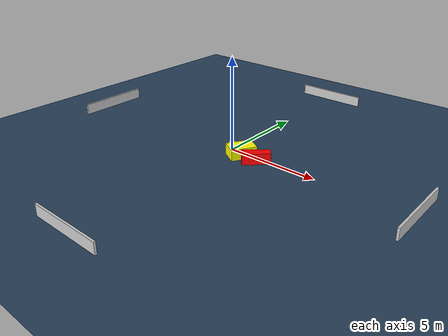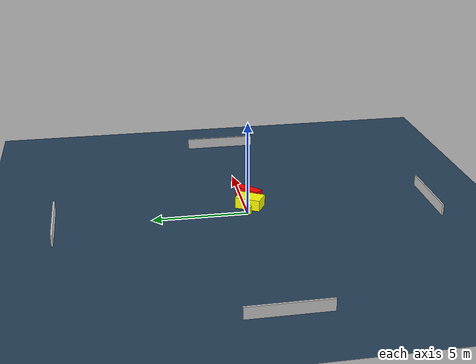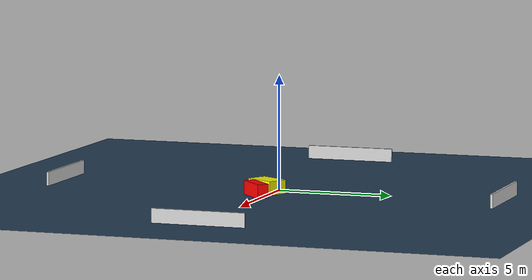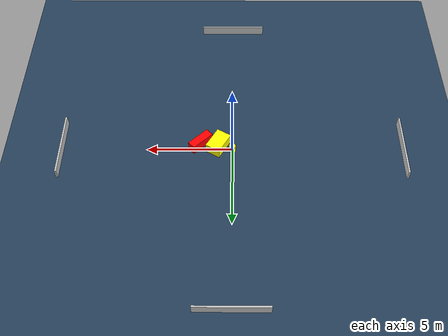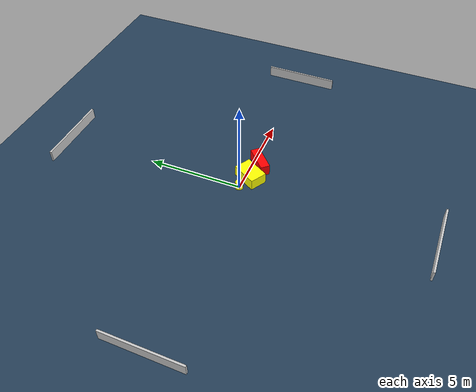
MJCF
<?xml version="1.0" ?>
<mujoco model="generated_environment">
  <option timestep="0.01" integrator="RK4" cone="elliptic"/>
  <default>
    <geom density="1"/>
  </default>
  <asset>
    <texture builtin="gradient" height="3072" name="skybox" rgb1="0.3 0.5 0.7" rgb2="0 0 0" type="skybox" width="512"/>
    <texture builtin="checker" height="300" name="groundplane" rgb1="0.2 0.3 0.4" rgb2="0.1 0.2 0.3" type="2d" width="300"/>
    <material name="groundplane" reflectance="0.2" texrepeat="5 5" texture="groundplane"/>
  </asset>
  <worldbody>
    <light dir="0 0 -1" directional="true" pos="0 0 1.5"/>
    <geom condim="3" friction="0.5 0.005 0.001" material="groundplane" name="floor" pos="0 0 0" size="0 0 0.05" type="plane"/>
    <body name="walls">
      <geom name="wall_1" condim="4" pos="-10.0 0.0 0.3" rgba="0.800000011920929 0.800000011920929 0.800000011920929 1.0" size="0.05 2.0 0.3" type="box"/>
      <geom name="wall_2" condim="4" pos="10.0 0.0 0.3" rgba="0.800000011920929 0.800000011920929 0.800000011920929 1.0" size="0.05 2.0 0.3" type="box"/>
      <geom name="wall_3" condim="4" pos="0.0 -10.0 0.3" rgba="0.800000011920929 0.800000011920929 0.800000011920929 1.0" size="2.0 0.05 0.3" type="box"/>
      <geom name="wall_4" condim="4" pos="0.0 10.0 0.3" rgba="0.800000011920929 0.800000011920929 0.800000011920929 1.0" size="2.0 0.05 0.3" type="box"/>
    </body>
    <body name="robot">
      <joint name="joint_x" type="slide" pos="0 0 0" axis="1 0 0"/>
      <joint name="joint_y" type="slide" pos="0 0 0" axis="0 1 0"/>
      <geom name="robot" type="cylinder" pos="0.0 0.0 0.2" size="0.2 0.2 0.0" mass="5.0" friction="1.0 0.005 0.0001" condim="4" rgba="1.0 1.0 0.0 1.0"/>
    </body>
    <body name="obstacle_1_movable">
      <geom name="obstacle_1_movable" condim="4" pos="0.8290095867028544 -0.2731153529474393 0.3" euler="0 0 329.8464351424824" friction="0.0 0.005 0.001" rgba="1.0 1.0 0.0 1.0" size="0.4551595239308284 0.6857511403076668 0.3" type="box" mass="0.1"/>
      <joint type="free"/>
    </body>
    <body name="obstacle_2_static">
      <geom name="obstacle_2_static" condim="4" pos="1.8790250944716773 -0.3970846973487288 0.3" euler="0 0 223.11020369681307" friction="0.0 0.005 0.001" rgba="1.0 0.0 0.0 1.0" size="0.7249431747890387 0.24745982454810017 0.3" type="box"/>
    </body>
  </worldbody>
  <actuator>
    <motor name="actuator_x" joint="joint_x" gear="1" ctrlrange="-1 1"/>
    <motor name="actuator_y" joint="joint_y" gear="1" ctrlrange="-1 1"/>
  </actuator>
</mujoco>
